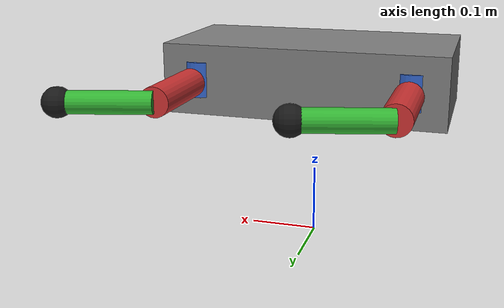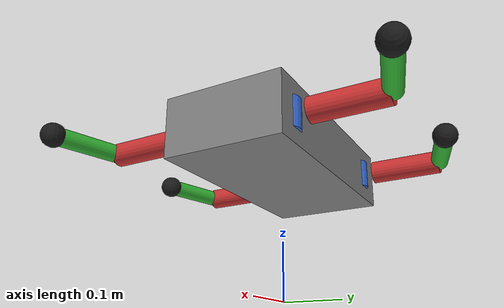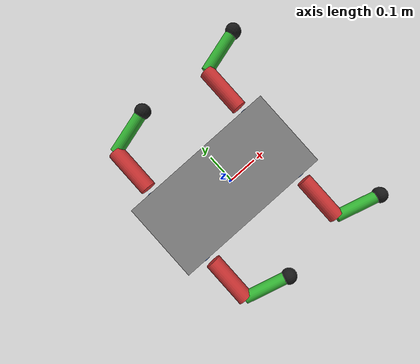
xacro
<?xml version="1.0"?>
<robot xmlns:xacro="http://www.ros.org/wiki/xacro" name="robot_dog">

  <xacro:include filename="$(find dog_description)/urdf/materials.xacro"/>
  <xacro:include filename="$(find dog_description)/urdf/leg.xacro"/>

  <xacro:property name="body_length" value="0.40"/>
  <xacro:property name="body_width" value="0.20"/>
  <xacro:property name="body_height" value="0.10"/>
  <xacro:property name="body_mass" value="5.0"/>

  <xacro:property name="leg_offset_x" value="0.15"/>
  <xacro:property name="leg_offset_y" value="0.08"/>
  <xacro:property name="body_height_z" value="0.25"/>

  <link name="base_link">
    <visual>
      <origin xyz="0 0 ${body_height_z}" rpy="0 0 0"/>
      <geometry>
        <box size="${body_length} ${body_width} ${body_height}"/>
      </geometry>
      <material name="grey"/>
    </visual>
    <collision>
      <origin xyz="0 0 ${body_height_z}" rpy="0 0 0"/>
      <geometry>
        <box size="${body_length} ${body_width} ${body_height}"/>
      </geometry>
    </collision>
    <inertial>
      <origin xyz="0 0 ${body_height_z}" rpy="0 0 0"/>
      <mass value="${body_mass}"/>
      <inertia ixx="0.05" ixy="0" ixz="0"
               iyy="0.1" iyz="0"
               izz="0.1"/>
    </inertial>
  </link>

  <xacro:leg leg_id="FL" parent="base_link"
             origin_x="${leg_offset_x}" origin_y="${leg_offset_y}" origin_z="${body_height_z}"
             reflect_y="1"/>

  <xacro:leg leg_id="FR" parent="base_link"
             origin_x="${leg_offset_x}" origin_y="${-leg_offset_y}" origin_z="${body_height_z}"
             reflect_y="-1"/>

  <xacro:leg leg_id="BL" parent="base_link"
             origin_x="${-leg_offset_x}" origin_y="${leg_offset_y}" origin_z="${body_height_z}"
             reflect_y="1"/>

  <xacro:leg leg_id="BR" parent="base_link"
             origin_x="${-leg_offset_x}" origin_y="${-leg_offset_y}" origin_z="${body_height_z}"
             reflect_y="-1"/>

</robot>

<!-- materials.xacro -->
<robot xmlns:xacro="http://www.ros.org/wiki/xacro">

  <material name="grey">
    <color rgba="0.5 0.5 0.5 1.0"/>
  </material>

  <material name="blue">
    <color rgba="0.2 0.4 0.8 1.0"/>
  </material>

  <material name="red">
    <color rgba="0.8 0.2 0.2 1.0"/>
  </material>

  <material name="green">
    <color rgba="0.2 0.7 0.2 1.0"/>
  </material>

  <material name="black">
    <color rgba="0.1 0.1 0.1 1.0"/>
  </material>

  <material name="white">
    <color rgba="0.9 0.9 0.9 1.0"/>
  </material>

  <material name="orange">
    <color rgba="1.0 0.5 0.0 1.0"/>
  </material>

</robot>

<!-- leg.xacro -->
<robot xmlns:xacro="http://www.ros.org/wiki/xacro">

  <xacro:property name="hip_length" value="0.05"/>
  <xacro:property name="thigh_length" value="0.12"/>
  <xacro:property name="calf_length" value="0.12"/>

  <xacro:property name="hip_radius" value="0.025"/>
  <xacro:property name="thigh_radius" value="0.02"/>
  <xacro:property name="calf_radius" value="0.015"/>

  <xacro:property name="hip_mass" value="0.3"/>
  <xacro:property name="thigh_mass" value="0.4"/>
  <xacro:property name="calf_mass" value="0.3"/>

  <xacro:macro name="leg" params="leg_id parent origin_x origin_y origin_z reflect_y">

    <link name="${leg_id}_hip_link">
      <visual>
        <origin xyz="0 0 0" rpy="0 0 0"/>
        <geometry>
          <cylinder radius="${hip_radius}" length="${hip_length}"/>
        </geometry>
        <material name="blue"/>
      </visual>
      <collision>
        <origin xyz="0 0 0" rpy="0 0 0"/>
        <geometry>
          <cylinder radius="${hip_radius}" length="${hip_length}"/>
        </geometry>
      </collision>
      <inertial>
        <origin xyz="0 0 0" rpy="0 0 0"/>
        <mass value="${hip_mass}"/>
        <inertia ixx="0.001" ixy="0" ixz="0"
                 iyy="0.001" iyz="0"
                 izz="0.001"/>
      </inertial>
    </link>

    <joint name="${leg_id}_hip_joint" type="revolute">
      <parent link="${parent}"/>
      <child link="${leg_id}_hip_link"/>
      <origin xyz="${origin_x} ${origin_y} ${origin_z}" rpy="0 0 0"/>
      <axis xyz="1 0 0"/>
      <limit lower="-1.0" upper="1.0" effort="10" velocity="5"/>
    </joint>

    <link name="${leg_id}_thigh_link">
      <visual>
        <origin xyz="0 0 ${-thigh_length/2}" rpy="0 0 0"/>
        <geometry>
          <cylinder radius="${thigh_radius}" length="${thigh_length}"/>
        </geometry>
        <material name="red"/>
      </visual>
      <collision>
        <origin xyz="0 0 ${-thigh_length/2}" rpy="0 0 0"/>
        <geometry>
          <cylinder radius="${thigh_radius}" length="${thigh_length}"/>
        </geometry>
      </collision>
      <inertial>
        <origin xyz="0 0 ${-thigh_length/2}" rpy="0 0 0"/>
        <mass value="${thigh_mass}"/>
        <inertia ixx="0.002" ixy="0" ixz="0"
                 iyy="0.002" iyz="0"
                 izz="0.0005"/>
      </inertial>
    </link>

    <joint name="${leg_id}_thigh_joint" type="revolute">
      <parent link="${leg_id}_hip_link"/>
      <child link="${leg_id}_thigh_link"/>
      <origin xyz="0 ${reflect_y * 0.04} 0" rpy="${reflect_y * 1.57} 0 0"/>
      <axis xyz="0 1 0"/>
      <limit lower="-1.5" upper="1.5" effort="15" velocity="8"/>
    </joint>

    <link name="${leg_id}_calf_link">
      <visual>
        <origin xyz="0 0 ${-calf_length/2}" rpy="0 0 0"/>
        <geometry>
          <cylinder radius="${calf_radius}" length="${calf_length}"/>
        </geometry>
        <material name="green"/>
      </visual>
      <collision>
        <origin xyz="0 0 ${-calf_length/2}" rpy="0 0 0"/>
        <geometry>
          <cylinder radius="${calf_radius}" length="${calf_length}"/>
        </geometry>
      </collision>
      <inertial>
        <origin xyz="0 0 ${-calf_length/2}" rpy="0 0 0"/>
        <mass value="${calf_mass}"/>
        <inertia ixx="0.0015" ixy="0" ixz="0"
                 iyy="0.0015" iyz="0"
                 izz="0.0002"/>
      </inertial>
    </link>

    <joint name="${leg_id}_calf_joint" type="revolute">
      <parent link="${leg_id}_thigh_link"/>
      <child link="${leg_id}_calf_link"/>
      <origin xyz="0 0 ${-thigh_length}" rpy="0 0 0"/>
      <axis xyz="0 1 0"/>
      <limit lower="-2.5" upper="-0.1" effort="15" velocity="8"/>
    </joint>

    <link name="${leg_id}_foot_link">
      <visual>
        <origin xyz="0 0 0" rpy="0 0 0"/>
        <geometry>
          <sphere radius="0.02"/>
        </geometry>
        <material name="black"/>
      </visual>
      <collision>
        <origin xyz="0 0 0" rpy="0 0 0"/>
        <geometry>
          <sphere radius="0.02"/>
        </geometry>
      </collision>
      <inertial>
        <origin xyz="0 0 0" rpy="0 0 0"/>
        <mass value="0.05"/>
        <inertia ixx="0.00001" ixy="0" ixz="0"
                 iyy="0.00001" iyz="0"
                 izz="0.00001"/>
      </inertial>
    </link>

    <joint name="${leg_id}_foot_joint" type="fixed">
      <parent link="${leg_id}_calf_link"/>
      <child link="${leg_id}_foot_link"/>
      <origin xyz="0 0 ${-calf_length}" rpy="0 0 0"/>
    </joint>

  </xacro:macro>

</robot>
